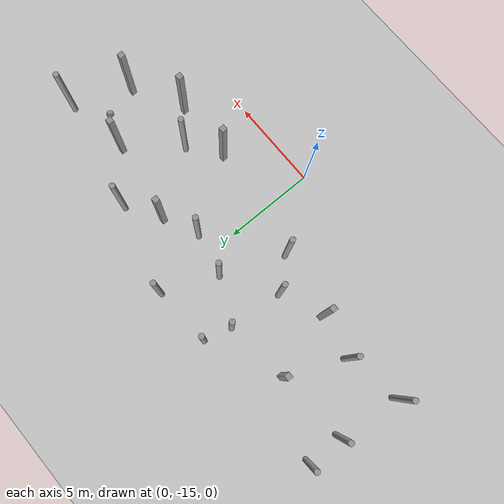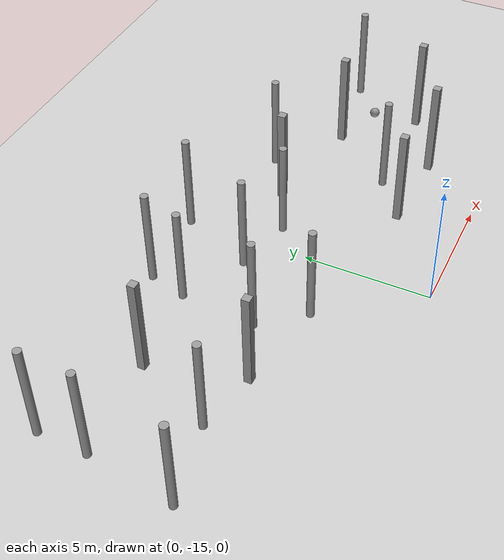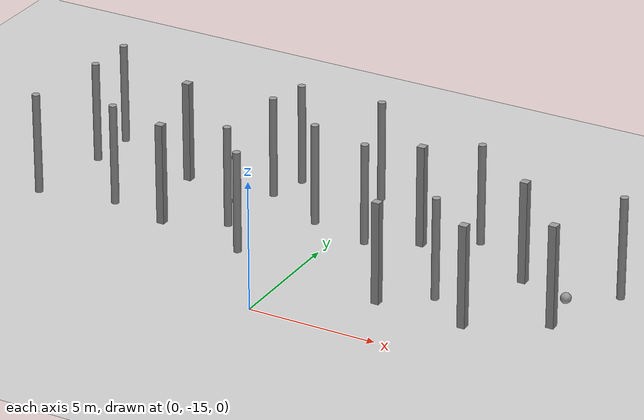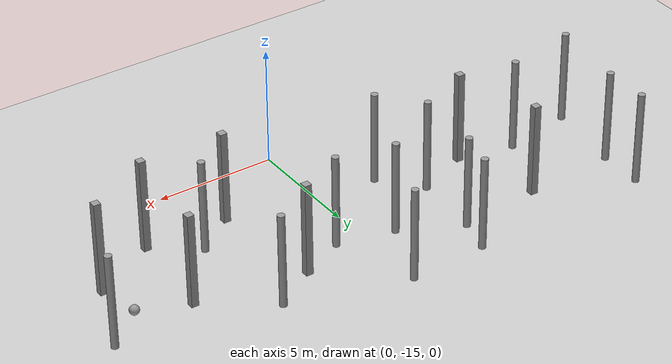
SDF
<sdf version="1.6">
 <world name="default">
  <model name="ground_plane">
   <static>1</static>
   <link name="link">
    <collision name="collision">
     <geometry><plane><normal>0 0 1</normal><size>100 100</size></plane></geometry>
    </collision>
    <visual name="visual">
     <cast_shadows>0</cast_shadows>
     <geometry><plane><normal>0 0 1</normal><size>100 100</size></plane></geometry>
     <material>
      <script><uri>file://media/materials/scripts/gazebo.material</uri><name>Gazebo/Gray</name></script>
     </material>
    </visual>
   </link>
  </model>
  <model name="unit_sphere">
   <link name="link">
    <inertial>
     <mass>1</mass>
     <inertia><ixx>0.1</ixx><ixy>0</ixy><ixz>0</ixz><iyy>0.1</iyy><iyz>0</iyz><izz>0.1</izz></inertia>
    </inertial>
    <gravity>0</gravity>
    <visual name="visual">
     <geometry><sphere><radius>0.203941</radius></sphere></geometry>
     <material>
      <script><name>Gazebo/Grey</name><uri>file://media/materials/scripts/gazebo.material</uri></script>
      <shader type="pixel"><normal_map>__default__</normal_map></shader>
     </material>
    </visual>
    <collision name="collision">
     <geometry><sphere><radius>0.203941</radius></sphere></geometry>
     <surface>
      <friction>
       <ode><mu>1</mu><mu2>1</mu2><fdir1>0 0 0</fdir1><slip1>0</slip1><slip2>0</slip2></ode>
       <torsional>
        <coefficient>1</coefficient>
        <patch_radius>0</patch_radius>
        <surface_radius>0</surface_radius>
        <use_patch_radius>1</use_patch_radius>
        <ode><slip>0</slip></ode>
       </torsional>
      </friction>
      <bounce><restitution_coefficient>0</restitution_coefficient><threshold>1e+06</threshold></bounce>
      <contact>
       <collide_without_contact>0</collide_without_contact>
       <collide_without_contact_bitmask>1</collide_without_contact_bitmask>
       <collide_bitmask>1</collide_bitmask>
       <ode>
        <soft_cfm>0</soft_cfm>
        <soft_erp>0.2</soft_erp>
        <kp>1e+13</kp>
        <kd>1</kd>
        <max_vel>0.01</max_vel>
        <min_depth>0</min_depth>
       </ode>
       <bullet>
        <split_impulse>1</split_impulse>
        <split_impulse_penetration_threshold>-0.01</split_impulse_penetration_threshold>
        <soft_cfm>0</soft_cfm>
        <soft_erp>0.2</soft_erp>
        <kp>1e+13</kp>
        <kd>1</kd>
       </bullet>
      </contact>
     </surface>
    </collision>
   </link>
   <static>0</static>
   <pose>9.54607 -9.14462 0.203941 0 -0 0</pose>
  </model>
  <model name="unit_box_clone_7">
   <link name="link">
    <inertial>
     <mass>1000</mass>
     <inertia><ixx>166.667</ixx><ixy>0</ixy><ixz>0</ixz><iyy>166.667</iyy><iyz>0</iyz><izz>166.667</izz></inertia>
    </inertial>
    <visual name="visual">
     <geometry><box><size>0.3 0.3 4</size></box></geometry>
     <material>
      <script><name>Gazebo/Grey</name><uri>file://media/materials/scripts/gazebo.material</uri></script>
      <shader type="vertex"><normal_map>__default__</normal_map></shader>
      <ambient>0.3 0.3 0.3 1</ambient>
      <diffuse>0.7 0.7 0.7 1</diffuse>
      <specular>0.01 0.01 0.01 1</specular>
      <emissive>0 0 0 1</emissive>
     </material>
    </visual>
    <collision name="collision">
     <geometry><box><size>0.3 0.3 4</size></box></geometry>
     <surface>
      <friction>
       <ode><mu>1</mu><mu2>1</mu2><fdir1>0 0 0</fdir1><slip1>0</slip1><slip2>0</slip2></ode>
       <torsional>
        <coefficient>1</coefficient>
        <patch_radius>0</patch_radius>
        <surface_radius>0</surface_radius>
        <use_patch_radius>1</use_patch_radius>
        <ode><slip>0</slip></ode>
       </torsional>
      </friction>
      <bounce><restitution_coefficient>0</restitution_coefficient><threshold>1e+06</threshold></bounce>
      <contact>
       <collide_without_contact>0</collide_without_contact>
       <collide_without_contact_bitmask>1</collide_without_contact_bitmask>
       <collide_bitmask>1</collide_bitmask>
       <ode>
        <soft_cfm>0</soft_cfm>
        <soft_erp>0.2</soft_erp>
        <kp>1e+13</kp>
        <kd>1</kd>
        <max_vel>0.01</max_vel>
        <min_depth>0</min_depth>
       </ode>
       <bullet>
        <split_impulse>1</split_impulse>
        <split_impulse_penetration_threshold>-0.01</split_impulse_penetration_threshold>
        <soft_cfm>0</soft_cfm>
        <soft_erp>0.2</soft_erp>
        <kp>1e+13</kp>
        <kd>1</kd>
       </bullet>
      </contact>
     </surface>
    </collision>
   </link>
   <static>0</static>
   <pose>9.86054 -10.9628 2.00001 -4.1e-05 -2e-06 -0.008062</pose>
  </model>
  <model name="unit_cylinder_clone_1_clone">
   <link name="link">
    <inertial>
     <mass>1000</mass>
     <inertia><ixx>145.833</ixx><ixy>0</ixy><ixz>0</ixz><iyy>145.833</iyy><iyz>0</iyz><izz>125</izz></inertia>
    </inertial>
    <visual name="visual">
     <geometry><cylinder><radius>0.15</radius><length>4</length></cylinder></geometry>
     <material>
      <script><name>Gazebo/Grey</name><uri>file://media/materials/scripts/gazebo.material</uri></script>
      <shader type="vertex"><normal_map>__default__</normal_map></shader>
      <ambient>0.3 0.3 0.3 1</ambient>
      <diffuse>0.7 0.7 0.7 1</diffuse>
      <specular>0.01 0.01 0.01 1</specular>
      <emissive>0 0 0 1</emissive>
     </material>
    </visual>
    <collision name="collision">
     <geometry><cylinder><radius>0.15</radius><length>4</length></cylinder></geometry>
     <surface>
      <friction>
       <ode><mu>1</mu><mu2>1</mu2><fdir1>0 0 0</fdir1><slip1>0</slip1><slip2>0</slip2></ode>
       <torsional>
        <coefficient>1</coefficient>
        <patch_radius>0</patch_radius>
        <surface_radius>0</surface_radius>
        <use_patch_radius>1</use_patch_radius>
        <ode><slip>0</slip></ode>
       </torsional>
      </friction>
      <bounce><restitution_coefficient>0</restitution_coefficient><threshold>1e+06</threshold></bounce>
      <contact>
       <collide_without_contact>0</collide_without_contact>
       <collide_without_contact_bitmask>1</collide_without_contact_bitmask>
       <collide_bitmask>1</collide_bitmask>
       <ode>
        <soft_cfm>0</soft_cfm>
        <soft_erp>0.2</soft_erp>
        <kp>1e+13</kp>
        <kd>1</kd>
        <max_vel>0.01</max_vel>
        <min_depth>0</min_depth>
       </ode>
       <bullet>
        <split_impulse>1</split_impulse>
        <split_impulse_penetration_threshold>-0.01</split_impulse_penetration_threshold>
        <soft_cfm>0</soft_cfm>
        <soft_erp>0.2</soft_erp>
        <kp>1e+13</kp>
        <kd>1</kd>
       </bullet>
      </contact>
     </surface>
    </collision>
   </link>
   <static>0</static>
   <pose>-1.25701 -8.01539 1.99995 -0.000271 -2.8e-05 -0.895801</pose>
  </model>
  <model name="unit_cylinder_clone_1_clone_2">
   <link name="link">
    <inertial>
     <mass>1000</mass>
     <inertia><ixx>145.833</ixx><ixy>0</ixy><ixz>0</ixz><iyy>145.833</iyy><iyz>0</iyz><izz>125</izz></inertia>
    </inertial>
    <visual name="visual">
     <geometry><cylinder><radius>0.15</radius><length>4</length></cylinder></geometry>
     <material>
      <script><name>Gazebo/Grey</name><uri>file://media/materials/scripts/gazebo.material</uri></script>
      <shader type="vertex"><normal_map>__default__</normal_map></shader>
      <ambient>0.3 0.3 0.3 1</ambient>
      <diffuse>0.7 0.7 0.7 1</diffuse>
      <specular>0.01 0.01 0.01 1</specular>
      <emissive>0 0 0 1</emissive>
     </material>
    </visual>
    <collision name="collision">
     <geometry><cylinder><radius>0.15</radius><length>4</length></cylinder></geometry>
     <surface>
      <friction>
       <ode><mu>1</mu><mu2>1</mu2><fdir1>0 0 0</fdir1><slip1>0</slip1><slip2>0</slip2></ode>
       <torsional>
        <coefficient>1</coefficient>
        <patch_radius>0</patch_radius>
        <surface_radius>0</surface_radius>
        <use_patch_radius>1</use_patch_radius>
        <ode><slip>0</slip></ode>
       </torsional>
      </friction>
      <bounce><restitution_coefficient>0</restitution_coefficient><threshold>1e+06</threshold></bounce>
      <contact>
       <collide_without_contact>0</collide_without_contact>
       <collide_without_contact_bitmask>1</collide_without_contact_bitmask>
       <collide_bitmask>1</collide_bitmask>
       <ode>
        <soft_cfm>0</soft_cfm>
        <soft_erp>0.2</soft_erp>
        <kp>1e+13</kp>
        <kd>1</kd>
        <max_vel>0.01</max_vel>
        <min_depth>0</min_depth>
       </ode>
       <bullet>
        <split_impulse>1</split_impulse>
        <split_impulse_penetration_threshold>-0.01</split_impulse_penetration_threshold>
        <soft_cfm>0</soft_cfm>
        <soft_erp>0.2</soft_erp>
        <kp>1e+13</kp>
        <kd>1</kd>
       </bullet>
      </contact>
     </surface>
    </collision>
   </link>
   <static>0</static>
   <pose>-3.73083 -6.76311 1.99995 -0.000271 -2.8e-05 -0.89745</pose>
  </model>
  <model name="unit_cylinder_clone_1_clone_6">
   <link name="link">
    <inertial>
     <mass>1000</mass>
     <inertia><ixx>145.833</ixx><ixy>0</ixy><ixz>0</ixz><iyy>145.833</iyy><iyz>0</iyz><izz>125</izz></inertia>
    </inertial>
    <visual name="visual">
     <geometry><cylinder><radius>0.15</radius><length>4</length></cylinder></geometry>
     <material>
      <script><name>Gazebo/Grey</name><uri>file://media/materials/scripts/gazebo.material</uri></script>
      <shader type="vertex"><normal_map>__default__</normal_map></shader>
      <ambient>0.3 0.3 0.3 1</ambient>
      <diffuse>0.7 0.7 0.7 1</diffuse>
      <specular>0.01 0.01 0.01 1</specular>
      <emissive>0 0 0 1</emissive>
     </material>
    </visual>
    <collision name="collision">
     <geometry><cylinder><radius>0.15</radius><length>4</length></cylinder></geometry>
     <surface>
      <friction>
       <ode><mu>1</mu><mu2>1</mu2><fdir1>0 0 0</fdir1><slip1>0</slip1><slip2>0</slip2></ode>
       <torsional>
        <coefficient>1</coefficient>
        <patch_radius>0</patch_radius>
        <surface_radius>0</surface_radius>
        <use_patch_radius>1</use_patch_radius>
        <ode><slip>0</slip></ode>
       </torsional>
      </friction>
      <bounce><restitution_coefficient>0</restitution_coefficient><threshold>1e+06</threshold></bounce>
      <contact>
       <collide_without_contact>0</collide_without_contact>
       <collide_without_contact_bitmask>1</collide_without_contact_bitmask>
       <collide_bitmask>1</collide_bitmask>
       <ode>
        <soft_cfm>0</soft_cfm>
        <soft_erp>0.2</soft_erp>
        <kp>1e+13</kp>
        <kd>1</kd>
        <max_vel>0.01</max_vel>
        <min_depth>0</min_depth>
       </ode>
       <bullet>
        <split_impulse>1</split_impulse>
        <split_impulse_penetration_threshold>-0.01</split_impulse_penetration_threshold>
        <soft_cfm>0</soft_cfm>
        <soft_erp>0.2</soft_erp>
        <kp>1e+13</kp>
        <kd>1</kd>
       </bullet>
      </contact>
     </surface>
    </collision>
   </link>
   <static>0</static>
   <pose>-3.34464 -5.28283 1.99998 -1e-06 -0 -0.211139</pose>
  </model>
  <model name="unit_cylinder_clone_1_clone_9">
   <link name="link">
    <inertial>
     <mass>1000</mass>
     <inertia><ixx>145.833</ixx><ixy>0</ixy><ixz>0</ixz><iyy>145.833</iyy><iyz>0</iyz><izz>125</izz></inertia>
    </inertial>
    <visual name="visual">
     <geometry><cylinder><radius>0.15</radius><length>4</length></cylinder></geometry>
     <material>
      <script><name>Gazebo/Grey</name><uri>file://media/materials/scripts/gazebo.material</uri></script>
      <shader type="vertex"><normal_map>__default__</normal_map></shader>
      <ambient>0.3 0.3 0.3 1</ambient>
      <diffuse>0.7 0.7 0.7 1</diffuse>
      <specular>0.01 0.01 0.01 1</specular>
      <emissive>0 0 0 1</emissive>
     </material>
    </visual>
    <collision name="collision">
     <geometry><cylinder><radius>0.15</radius><length>4</length></cylinder></geometry>
     <surface>
      <friction>
       <ode><mu>1</mu><mu2>1</mu2><fdir1>0 0 0</fdir1><slip1>0</slip1><slip2>0</slip2></ode>
       <torsional>
        <coefficient>1</coefficient>
        <patch_radius>0</patch_radius>
        <surface_radius>0</surface_radius>
        <use_patch_radius>1</use_patch_radius>
        <ode><slip>0</slip></ode>
       </torsional>
      </friction>
      <bounce><restitution_coefficient>0</restitution_coefficient><threshold>1e+06</threshold></bounce>
      <contact>
       <collide_without_contact>0</collide_without_contact>
       <collide_without_contact_bitmask>1</collide_without_contact_bitmask>
       <collide_bitmask>1</collide_bitmask>
       <ode>
        <soft_cfm>0</soft_cfm>
        <soft_erp>0.2</soft_erp>
        <kp>1e+13</kp>
        <kd>1</kd>
        <max_vel>0.01</max_vel>
        <min_depth>0</min_depth>
       </ode>
       <bullet>
        <split_impulse>1</split_impulse>
        <split_impulse_penetration_threshold>-0.01</split_impulse_penetration_threshold>
        <soft_cfm>0</soft_cfm>
        <soft_erp>0.2</soft_erp>
        <kp>1e+13</kp>
        <kd>1</kd>
       </bullet>
      </contact>
     </surface>
    </collision>
   </link>
   <static>0</static>
   <pose>11.0857 -7.86361 1.99995 -0.000271 -2.8e-05 -0.898002</pose>
  </model>
  <model name="unit_cylinder_clone_1_clone_10">
   <link name="link">
    <inertial>
     <mass>1000</mass>
     <inertia><ixx>145.833</ixx><ixy>0</ixy><ixz>0</ixz><iyy>145.833</iyy><iyz>0</iyz><izz>125</izz></inertia>
    </inertial>
    <visual name="visual">
     <geometry><cylinder><radius>0.15</radius><length>4</length></cylinder></geometry>
     <material>
      <script><name>Gazebo/Grey</name><uri>file://media/materials/scripts/gazebo.material</uri></script>
      <shader type="vertex"><normal_map>__default__</normal_map></shader>
      <ambient>0.3 0.3 0.3 1</ambient>
      <diffuse>0.7 0.7 0.7 1</diffuse>
      <specular>0.01 0.01 0.01 1</specular>
      <emissive>0 0 0 1</emissive>
     </material>
    </visual>
    <collision name="collision">
     <geometry><cylinder><radius>0.15</radius><length>4</length></cylinder></geometry>
     <surface>
      <friction>
       <ode><mu>1</mu><mu2>1</mu2><fdir1>0 0 0</fdir1><slip1>0</slip1><slip2>0</slip2></ode>
       <torsional>
        <coefficient>1</coefficient>
        <patch_radius>0</patch_radius>
        <surface_radius>0</surface_radius>
        <use_patch_radius>1</use_patch_radius>
        <ode><slip>0</slip></ode>
       </torsional>
      </friction>
      <bounce><restitution_coefficient>0</restitution_coefficient><threshold>1e+06</threshold></bounce>
      <contact>
       <collide_without_contact>0</collide_without_contact>
       <collide_without_contact_bitmask>1</collide_without_contact_bitmask>
       <collide_bitmask>1</collide_bitmask>
       <ode>
        <soft_cfm>0</soft_cfm>
        <soft_erp>0.2</soft_erp>
        <kp>1e+13</kp>
        <kd>1</kd>
        <max_vel>0.01</max_vel>
        <min_depth>0</min_depth>
       </ode>
       <bullet>
        <split_impulse>1</split_impulse>
        <split_impulse_penetration_threshold>-0.01</split_impulse_penetration_threshold>
        <soft_cfm>0</soft_cfm>
        <soft_erp>0.2</soft_erp>
        <kp>1e+13</kp>
        <kd>1</kd>
       </bullet>
      </contact>
     </surface>
    </collision>
   </link>
   <static>0</static>
   <pose>-0.051733 -5.11046 1.99998 -2e-06 -0 -0.192808</pose>
  </model>
  <model name="unit_cylinder_clone_1_clone_15">
   <link name="link">
    <inertial>
     <mass>1000</mass>
     <inertia><ixx>145.833</ixx><ixy>0</ixy><ixz>0</ixz><iyy>145.833</iyy><iyz>0</iyz><izz>125</izz></inertia>
    </inertial>
    <visual name="visual">
     <geometry><cylinder><radius>0.15</radius><length>4</length></cylinder></geometry>
     <material>
      <script><name>Gazebo/Grey</name><uri>file://media/materials/scripts/gazebo.material</uri></script>
      <shader type="vertex"><normal_map>__default__</normal_map></shader>
      <ambient>0.3 0.3 0.3 1</ambient>
      <diffuse>0.7 0.7 0.7 1</diffuse>
      <specular>0.01 0.01 0.01 1</specular>
      <emissive>0 0 0 1</emissive>
     </material>
    </visual>
    <collision name="collision">
     <geometry><cylinder><radius>0.15</radius><length>4</length></cylinder></geometry>
     <surface>
      <friction>
       <ode><mu>1</mu><mu2>1</mu2><fdir1>0 0 0</fdir1><slip1>0</slip1><slip2>0</slip2></ode>
       <torsional>
        <coefficient>1</coefficient>
        <patch_radius>0</patch_radius>
        <surface_radius>0</surface_radius>
        <use_patch_radius>1</use_patch_radius>
        <ode><slip>0</slip></ode>
       </torsional>
      </friction>
      <bounce><restitution_coefficient>0</restitution_coefficient><threshold>1e+06</threshold></bounce>
      <contact>
       <collide_without_contact>0</collide_without_contact>
       <collide_without_contact_bitmask>1</collide_without_contact_bitmask>
       <collide_bitmask>1</collide_bitmask>
       <ode>
        <soft_cfm>0</soft_cfm>
        <soft_erp>0.2</soft_erp>
        <kp>1e+13</kp>
        <kd>1</kd>
        <max_vel>0.01</max_vel>
        <min_depth>0</min_depth>
       </ode>
       <bullet>
        <split_impulse>1</split_impulse>
        <split_impulse_penetration_threshold>-0.01</split_impulse_penetration_threshold>
        <soft_cfm>0</soft_cfm>
        <soft_erp>0.2</soft_erp>
        <kp>1e+13</kp>
        <kd>1</kd>
       </bullet>
      </contact>
     </surface>
    </collision>
   </link>
   <static>0</static>
   <pose>-11.097 -7.3718 1.99995 -0.000271 -2.9e-05 -0.899273</pose>
  </model>
  <model name="unit_cylinder_clone_1_clone_18">
   <link name="link">
    <inertial>
     <mass>1000</mass>
     <inertia><ixx>145.833</ixx><ixy>0</ixy><ixz>0</ixz><iyy>145.833</iyy><iyz>0</iyz><izz>125</izz></inertia>
    </inertial>
    <visual name="visual">
     <geometry><cylinder><radius>0.15</radius><length>4</length></cylinder></geometry>
     <material>
      <script><name>Gazebo/Grey</name><uri>file://media/materials/scripts/gazebo.material</uri></script>
      <shader type="vertex"><normal_map>__default__</normal_map></shader>
      <ambient>0.3 0.3 0.3 1</ambient>
      <diffuse>0.7 0.7 0.7 1</diffuse>
      <specular>0.01 0.01 0.01 1</specular>
      <emissive>0 0 0 1</emissive>
     </material>
    </visual>
    <collision name="collision">
     <geometry><cylinder><radius>0.15</radius><length>4</length></cylinder></geometry>
     <surface>
      <friction>
       <ode><mu>1</mu><mu2>1</mu2><fdir1>0 0 0</fdir1><slip1>0</slip1><slip2>0</slip2></ode>
       <torsional>
        <coefficient>1</coefficient>
        <patch_radius>0</patch_radius>
        <surface_radius>0</surface_radius>
        <use_patch_radius>1</use_patch_radius>
        <ode><slip>0</slip></ode>
       </torsional>
      </friction>
      <bounce><restitution_coefficient>0</restitution_coefficient><threshold>1e+06</threshold></bounce>
      <contact>
       <collide_without_contact>0</collide_without_contact>
       <collide_without_contact_bitmask>1</collide_without_contact_bitmask>
       <collide_bitmask>1</collide_bitmask>
       <ode>
        <soft_cfm>0</soft_cfm>
        <soft_erp>0.2</soft_erp>
        <kp>1e+13</kp>
        <kd>1</kd>
        <max_vel>0.01</max_vel>
        <min_depth>0</min_depth>
       </ode>
       <bullet>
        <split_impulse>1</split_impulse>
        <split_impulse_penetration_threshold>-0.01</split_impulse_penetration_threshold>
        <soft_cfm>0</soft_cfm>
        <soft_erp>0.2</soft_erp>
        <kp>1e+13</kp>
        <kd>1</kd>
       </bullet>
      </contact>
     </surface>
    </collision>
   </link>
   <static>0</static>
   <pose>-11.5682 -10.7547 1.99995 -0.000271 -3e-05 -0.902959</pose>
  </model>
  <model name="unit_cylinder_clone_1_clone_19">
   <link name="link">
    <inertial>
     <mass>1000</mass>
     <inertia><ixx>145.833</ixx><ixy>0</ixy><ixz>0</ixz><iyy>145.833</iyy><iyz>0</iyz><izz>125</izz></inertia>
    </inertial>
    <visual name="visual">
     <geometry><cylinder><radius>0.15</radius><length>4</length></cylinder></geometry>
     <material>
      <script><name>Gazebo/Grey</name><uri>file://media/materials/scripts/gazebo.material</uri></script>
      <shader type="vertex"><normal_map>__default__</normal_map></shader>
      <ambient>0.3 0.3 0.3 1</ambient>
      <diffuse>0.7 0.7 0.7 1</diffuse>
      <specular>0.01 0.01 0.01 1</specular>
      <emissive>0 0 0 1</emissive>
     </material>
    </visual>
    <collision name="collision">
     <geometry><cylinder><radius>0.15</radius><length>4</length></cylinder></geometry>
     <surface>
      <friction>
       <ode><mu>1</mu><mu2>1</mu2><fdir1>0 0 0</fdir1><slip1>0</slip1><slip2>0</slip2></ode>
       <torsional>
        <coefficient>1</coefficient>
        <patch_radius>0</patch_radius>
        <surface_radius>0</surface_radius>
        <use_patch_radius>1</use_patch_radius>
        <ode><slip>0</slip></ode>
       </torsional>
      </friction>
      <bounce><restitution_coefficient>0</restitution_coefficient><threshold>1e+06</threshold></bounce>
      <contact>
       <collide_without_contact>0</collide_without_contact>
       <collide_without_contact_bitmask>1</collide_without_contact_bitmask>
       <collide_bitmask>1</collide_bitmask>
       <ode>
        <soft_cfm>0</soft_cfm>
        <soft_erp>0.2</soft_erp>
        <kp>1e+13</kp>
        <kd>1</kd>
        <max_vel>0.01</max_vel>
        <min_depth>0</min_depth>
       </ode>
       <bullet>
        <split_impulse>1</split_impulse>
        <split_impulse_penetration_threshold>-0.01</split_impulse_penetration_threshold>
        <soft_cfm>0</soft_cfm>
        <soft_erp>0.2</soft_erp>
        <kp>1e+13</kp>
        <kd>1</kd>
       </bullet>
      </contact>
     </surface>
    </collision>
   </link>
   <static>0</static>
   <pose>1.10671 -8.55188 1.99995 -0.000271 -2.9e-05 -0.899999</pose>
  </model>
  <model name="unit_cylinder_clone_1_clone_25">
   <link name="link">
    <inertial>
     <mass>1000</mass>
     <inertia><ixx>145.833</ixx><ixy>0</ixy><ixz>0</ixz><iyy>145.833</iyy><iyz>0</iyz><izz>125</izz></inertia>
    </inertial>
    <visual name="visual">
     <geometry><cylinder><radius>0.15</radius><length>4</length></cylinder></geometry>
     <material>
      <script><name>Gazebo/Grey</name><uri>file://media/materials/scripts/gazebo.material</uri></script>
      <shader type="vertex"><normal_map>__default__</normal_map></shader>
      <ambient>0.3 0.3 0.3 1</ambient>
      <diffuse>0.7 0.7 0.7 1</diffuse>
      <specular>0.01 0.01 0.01 1</specular>
      <emissive>0 0 0 1</emissive>
     </material>
    </visual>
    <collision name="collision">
     <geometry><cylinder><radius>0.15</radius><length>4</length></cylinder></geometry>
     <surface>
      <friction>
       <ode><mu>1</mu><mu2>1</mu2><fdir1>0 0 0</fdir1><slip1>0</slip1><slip2>0</slip2></ode>
       <torsional>
        <coefficient>1</coefficient>
        <patch_radius>0</patch_radius>
        <surface_radius>0</surface_radius>
        <use_patch_radius>1</use_patch_radius>
        <ode><slip>0</slip></ode>
       </torsional>
      </friction>
      <bounce><restitution_coefficient>0</restitution_coefficient><threshold>1e+06</threshold></bounce>
      <contact>
       <collide_without_contact>0</collide_without_contact>
       <collide_without_contact_bitmask>1</collide_without_contact_bitmask>
       <collide_bitmask>1</collide_bitmask>
       <ode>
        <soft_cfm>0</soft_cfm>
        <soft_erp>0.2</soft_erp>
        <kp>1e+13</kp>
        <kd>1</kd>
        <max_vel>0.01</max_vel>
        <min_depth>0</min_depth>
       </ode>
       <bullet>
        <split_impulse>1</split_impulse>
        <split_impulse_penetration_threshold>-0.01</split_impulse_penetration_threshold>
        <soft_cfm>0</soft_cfm>
        <soft_erp>0.2</soft_erp>
        <kp>1e+13</kp>
        <kd>1</kd>
       </bullet>
      </contact>
     </surface>
    </collision>
   </link>
   <static>0</static>
   <pose>-11.0466 -5.44229 1.99995 -0.000271 -3e-05 -0.904055</pose>
  </model>
  <model name="unit_cylinder_clone_1_clone_26">
   <link name="link">
    <inertial>
     <mass>1000</mass>
     <inertia><ixx>145.833</ixx><ixy>0</ixy><ixz>0</ixz><iyy>145.833</iyy><iyz>0</iyz><izz>125</izz></inertia>
    </inertial>
    <visual name="visual">
     <geometry><cylinder><radius>0.15</radius><length>4</length></cylinder></geometry>
     <material>
      <script><name>Gazebo/Grey</name><uri>file://media/materials/scripts/gazebo.material</uri></script>
      <shader type="vertex"><normal_map>__default__</normal_map></shader>
      <ambient>0.3 0.3 0.3 1</ambient>
      <diffuse>0.7 0.7 0.7 1</diffuse>
      <specular>0.01 0.01 0.01 1</specular>
      <emissive>0 0 0 1</emissive>
     </material>
    </visual>
    <collision name="collision">
     <geometry><cylinder><radius>0.15</radius><length>4</length></cylinder></geometry>
     <surface>
      <friction>
       <ode><mu>1</mu><mu2>1</mu2><fdir1>0 0 0</fdir1><slip1>0</slip1><slip2>0</slip2></ode>
       <torsional>
        <coefficient>1</coefficient>
        <patch_radius>0</patch_radius>
        <surface_radius>0</surface_radius>
        <use_patch_radius>1</use_patch_radius>
        <ode><slip>0</slip></ode>
       </torsional>
      </friction>
      <bounce><restitution_coefficient>0</restitution_coefficient><threshold>1e+06</threshold></bounce>
      <contact>
       <collide_without_contact>0</collide_without_contact>
       <collide_without_contact_bitmask>1</collide_without_contact_bitmask>
       <collide_bitmask>1</collide_bitmask>
       <ode>
        <soft_cfm>0</soft_cfm>
        <soft_erp>0.2</soft_erp>
        <kp>1e+13</kp>
        <kd>1</kd>
        <max_vel>0.01</max_vel>
        <min_depth>0</min_depth>
       </ode>
       <bullet>
        <split_impulse>1</split_impulse>
        <split_impulse_penetration_threshold>-0.01</split_impulse_penetration_threshold>
        <soft_cfm>0</soft_cfm>
        <soft_erp>0.2</soft_erp>
        <kp>1e+13</kp>
        <kd>1</kd>
       </bullet>
      </contact>
     </surface>
    </collision>
   </link>
   <static>0</static>
   <pose>-3.96559 -9.72209 1.99995 -0.000271 -3e-05 -0.903207</pose>
  </model>
  <model name="unit_cylinder_clone_1_clone_28">
   <link name="link">
    <inertial>
     <mass>1000</mass>
     <inertia><ixx>145.833</ixx><ixy>0</ixy><ixz>0</ixz><iyy>145.833</iyy><iyz>0</iyz><izz>125</izz></inertia>
    </inertial>
    <visual name="visual">
     <geometry><cylinder><radius>0.15</radius><length>4</length></cylinder></geometry>
     <material>
      <script><name>Gazebo/Grey</name><uri>file://media/materials/scripts/gazebo.material</uri></script>
      <shader type="vertex"><normal_map>__default__</normal_map></shader>
      <ambient>0.3 0.3 0.3 1</ambient>
      <diffuse>0.7 0.7 0.7 1</diffuse>
      <specular>0.01 0.01 0.01 1</specular>
      <emissive>0 0 0 1</emissive>
     </material>
    </visual>
    <collision name="collision">
     <geometry><cylinder><radius>0.15</radius><length>4</length></cylinder></geometry>
     <surface>
      <friction>
       <ode><mu>1</mu><mu2>1</mu2><fdir1>0 0 0</fdir1><slip1>0</slip1><slip2>0</slip2></ode>
       <torsional>
        <coefficient>1</coefficient>
        <patch_radius>0</patch_radius>
        <surface_radius>0</surface_radius>
        <use_patch_radius>1</use_patch_radius>
        <ode><slip>0</slip></ode>
       </torsional>
      </friction>
      <bounce><restitution_coefficient>0</restitution_coefficient><threshold>1e+06</threshold></bounce>
      <contact>
       <collide_without_contact>0</collide_without_contact>
       <collide_without_contact_bitmask>1</collide_without_contact_bitmask>
       <collide_bitmask>1</collide_bitmask>
       <ode>
        <soft_cfm>0</soft_cfm>
        <soft_erp>0.2</soft_erp>
        <kp>1e+13</kp>
        <kd>1</kd>
        <max_vel>0.01</max_vel>
        <min_depth>0</min_depth>
       </ode>
       <bullet>
        <split_impulse>1</split_impulse>
        <split_impulse_penetration_threshold>-0.01</split_impulse_penetration_threshold>
        <soft_cfm>0</soft_cfm>
        <soft_erp>0.2</soft_erp>
        <kp>1e+13</kp>
        <kd>1</kd>
       </bullet>
      </contact>
     </surface>
    </collision>
   </link>
   <static>0</static>
   <pose>-2.60917 -11.3566 1.99995 -0.000271 -3e-05 -0.904064</pose>
  </model>
  <model name="unit_cylinder_clone_1_clone_30">
   <link name="link">
    <inertial>
     <mass>1000</mass>
     <inertia><ixx>145.833</ixx><ixy>0</ixy><ixz>0</ixz><iyy>145.833</iyy><iyz>0</iyz><izz>125</izz></inertia>
    </inertial>
    <visual name="visual">
     <geometry><cylinder><radius>0.15</radius><length>4</length></cylinder></geometry>
     <material>
      <script><name>Gazebo/Grey</name><uri>file://media/materials/scripts/gazebo.material</uri></script>
      <shader type="vertex"><normal_map>__default__</normal_map></shader>
      <ambient>0.3 0.3 0.3 1</ambient>
      <diffuse>0.7 0.7 0.7 1</diffuse>
      <specular>0.01 0.01 0.01 1</specular>
      <emissive>0 0 0 1</emissive>
     </material>
    </visual>
    <collision name="collision">
     <geometry><cylinder><radius>0.15</radius><length>4</length></cylinder></geometry>
     <surface>
      <friction>
       <ode><mu>1</mu><mu2>1</mu2><fdir1>0 0 0</fdir1><slip1>0</slip1><slip2>0</slip2></ode>
       <torsional>
        <coefficient>1</coefficient>
        <patch_radius>0</patch_radius>
        <surface_radius>0</surface_radius>
        <use_patch_radius>1</use_patch_radius>
        <ode><slip>0</slip></ode>
       </torsional>
      </friction>
      <bounce><restitution_coefficient>0</restitution_coefficient><threshold>1e+06</threshold></bounce>
      <contact>
       <collide_without_contact>0</collide_without_contact>
       <collide_without_contact_bitmask>1</collide_without_contact_bitmask>
       <collide_bitmask>1</collide_bitmask>
       <ode>
        <soft_cfm>0</soft_cfm>
        <soft_erp>0.2</soft_erp>
        <kp>1e+13</kp>
        <kd>1</kd>
        <max_vel>0.01</max_vel>
        <min_depth>0</min_depth>
       </ode>
       <bullet>
        <split_impulse>1</split_impulse>
        <split_impulse_penetration_threshold>-0.01</split_impulse_penetration_threshold>
        <soft_cfm>0</soft_cfm>
        <soft_erp>0.2</soft_erp>
        <kp>1e+13</kp>
        <kd>1</kd>
       </bullet>
      </contact>
     </surface>
    </collision>
   </link>
   <static>0</static>
   <pose>-8.57277 -10.1765 1.99995 -0.000271 -3e-05 -0.90405</pose>
  </model>
  <model name="unit_cylinder_clone_clone">
   <link name="link">
    <inertial>
     <mass>1000</mass>
     <inertia><ixx>145.833</ixx><ixy>0</ixy><ixz>0</ixz><iyy>145.833</iyy><iyz>0</iyz><izz>125</izz></inertia>
    </inertial>
    <visual name="visual">
     <geometry><cylinder><radius>0.15</radius><length>4</length></cylinder></geometry>
     <material>
      <script><name>Gazebo/Grey</name><uri>file://media/materials/scripts/gazebo.material</uri></script>
      <shader type="vertex"><normal_map>__default__</normal_map></shader>
      <ambient>0.3 0.3 0.3 1</ambient>
      <diffuse>0.7 0.7 0.7 1</diffuse>
      <specular>0.01 0.01 0.01 1</specular>
      <emissive>0 0 0 1</emissive>
     </material>
    </visual>
    <collision name="collision">
     <geometry><cylinder><radius>0.15</radius><length>4</length></cylinder></geometry>
     <surface>
      <friction>
       <ode><mu>1</mu><mu2>1</mu2><fdir1>0 0 0</fdir1><slip1>0</slip1><slip2>0</slip2></ode>
       <torsional>
        <coefficient>1</coefficient>
        <patch_radius>0</patch_radius>
        <surface_radius>0</surface_radius>
        <use_patch_radius>1</use_patch_radius>
        <ode><slip>0</slip></ode>
       </torsional>
      </friction>
      <bounce><restitution_coefficient>0</restitution_coefficient><threshold>1e+06</threshold></bounce>
      <contact>
       <collide_without_contact>0</collide_without_contact>
       <collide_without_contact_bitmask>1</collide_without_contact_bitmask>
       <collide_bitmask>1</collide_bitmask>
       <ode>
        <soft_cfm>0</soft_cfm>
        <soft_erp>0.2</soft_erp>
        <kp>1e+13</kp>
        <kd>1</kd>
        <max_vel>0.01</max_vel>
        <min_depth>0</min_depth>
       </ode>
       <bullet>
        <split_impulse>1</split_impulse>
        <split_impulse_penetration_threshold>-0.01</split_impulse_penetration_threshold>
        <soft_cfm>0</soft_cfm>
        <soft_erp>0.2</soft_erp>
        <kp>1e+13</kp>
        <kd>1</kd>
       </bullet>
      </contact>
     </surface>
    </collision>
   </link>
   <static>0</static>
   <pose>5.35111 -11.104 1.99998 -1e-06 1e-06 -0.188056</pose>
  </model>
  <model name="unit_cylinder_clone_clone_1">
   <link name="link">
    <inertial>
     <mass>1000</mass>
     <inertia><ixx>145.833</ixx><ixy>0</ixy><ixz>0</ixz><iyy>145.833</iyy><iyz>0</iyz><izz>125</izz></inertia>
    </inertial>
    <visual name="visual">
     <geometry><cylinder><radius>0.15</radius><length>4</length></cylinder></geometry>
     <material>
      <script><name>Gazebo/Grey</name><uri>file://media/materials/scripts/gazebo.material</uri></script>
      <shader type="vertex"><normal_map>__default__</normal_map></shader>
      <ambient>0.3 0.3 0.3 1</ambient>
      <diffuse>0.7 0.7 0.7 1</diffuse>
      <specular>0.01 0.01 0.01 1</specular>
      <emissive>0 0 0 1</emissive>
     </material>
    </visual>
    <collision name="collision">
     <geometry><cylinder><radius>0.15</radius><length>4</length></cylinder></geometry>
     <surface>
      <friction>
       <ode><mu>1</mu><mu2>1</mu2><fdir1>0 0 0</fdir1><slip1>0</slip1><slip2>0</slip2></ode>
       <torsional>
        <coefficient>1</coefficient>
        <patch_radius>0</patch_radius>
        <surface_radius>0</surface_radius>
        <use_patch_radius>1</use_patch_radius>
        <ode><slip>0</slip></ode>
       </torsional>
      </friction>
      <bounce><restitution_coefficient>0</restitution_coefficient><threshold>1e+06</threshold></bounce>
      <contact>
       <collide_without_contact>0</collide_without_contact>
       <collide_without_contact_bitmask>1</collide_without_contact_bitmask>
       <collide_bitmask>1</collide_bitmask>
       <ode>
        <soft_cfm>0</soft_cfm>
        <soft_erp>0.2</soft_erp>
        <kp>1e+13</kp>
        <kd>1</kd>
        <max_vel>0.01</max_vel>
        <min_depth>0</min_depth>
       </ode>
       <bullet>
        <split_impulse>1</split_impulse>
        <split_impulse_penetration_threshold>-0.01</split_impulse_penetration_threshold>
        <soft_cfm>0</soft_cfm>
        <soft_erp>0.2</soft_erp>
        <kp>1e+13</kp>
        <kd>1</kd>
       </bullet>
      </contact>
     </surface>
    </collision>
   </link>
   <static>0</static>
   <pose>4.81989 -6.50765 1.99998 -2e-06 1e-06 -0.193349</pose>
  </model>
  <model name="unit_box_clone_26_clone_0">
   <link name="link">
    <inertial>
     <mass>1000</mass>
     <inertia><ixx>166.667</ixx><ixy>0</ixy><ixz>0</ixz><iyy>166.667</iyy><iyz>0</iyz><izz>166.667</izz></inertia>
    </inertial>
    <visual name="visual">
     <geometry><box><size>0.3 0.3 4</size></box></geometry>
     <material>
      <script><name>Gazebo/Grey</name><uri>file://media/materials/scripts/gazebo.material</uri></script>
      <shader type="vertex"><normal_map>__default__</normal_map></shader>
      <ambient>0.3 0.3 0.3 1</ambient>
      <diffuse>0.7 0.7 0.7 1</diffuse>
      <specular>0.01 0.01 0.01 1</specular>
      <emissive>0 0 0 1</emissive>
     </material>
    </visual>
    <collision name="collision">
     <geometry><box><size>0.3 0.3 4</size></box></geometry>
     <surface>
      <friction>
       <ode><mu>1</mu><mu2>1</mu2><fdir1>0 0 0</fdir1><slip1>0</slip1><slip2>0</slip2></ode>
       <torsional>
        <coefficient>1</coefficient>
        <patch_radius>0</patch_radius>
        <surface_radius>0</surface_radius>
        <use_patch_radius>1</use_patch_radius>
        <ode><slip>0</slip></ode>
       </torsional>
      </friction>
      <bounce><restitution_coefficient>0</restitution_coefficient><threshold>1e+06</threshold></bounce>
      <contact>
       <collide_without_contact>0</collide_without_contact>
       <collide_without_contact_bitmask>1</collide_without_contact_bitmask>
       <collide_bitmask>1</collide_bitmask>
       <ode>
        <soft_cfm>0</soft_cfm>
        <soft_erp>0.2</soft_erp>
        <kp>1e+13</kp>
        <kd>1</kd>
        <max_vel>0.01</max_vel>
        <min_depth>0</min_depth>
       </ode>
       <bullet>
        <split_impulse>1</split_impulse>
        <split_impulse_penetration_threshold>-0.01</split_impulse_penetration_threshold>
        <soft_cfm>0</soft_cfm>
        <soft_erp>0.2</soft_erp>
        <kp>1e+13</kp>
        <kd>1</kd>
       </bullet>
      </contact>
     </surface>
    </collision>
   </link>
   <static>0</static>
   <pose>2.98343 -7.66714 2.00001 1e-05 4.5e-05 -0.002093</pose>
  </model>
  <model name="unit_box_clone_26_clone_7">
   <link name="link">
    <inertial>
     <mass>1000</mass>
     <inertia><ixx>166.667</ixx><ixy>0</ixy><ixz>0</ixz><iyy>166.667</iyy><iyz>0</iyz><izz>166.667</izz></inertia>
    </inertial>
    <visual name="visual">
     <geometry><box><size>0.3 0.3 4</size></box></geometry>
     <material>
      <script><name>Gazebo/Grey</name><uri>file://media/materials/scripts/gazebo.material</uri></script>
      <shader type="vertex"><normal_map>__default__</normal_map></shader>
      <ambient>0.3 0.3 0.3 1</ambient>
      <diffuse>0.7 0.7 0.7 1</diffuse>
      <specular>0.01 0.01 0.01 1</specular>
      <emissive>0 0 0 1</emissive>
     </material>
    </visual>
    <collision name="collision">
     <geometry><box><size>0.3 0.3 4</size></box></geometry>
     <surface>
      <friction>
       <ode><mu>1</mu><mu2>1</mu2><fdir1>0 0 0</fdir1><slip1>0</slip1><slip2>0</slip2></ode>
       <torsional>
        <coefficient>1</coefficient>
        <patch_radius>0</patch_radius>
        <surface_radius>0</surface_radius>
        <use_patch_radius>1</use_patch_radius>
        <ode><slip>0</slip></ode>
       </torsional>
      </friction>
      <bounce><restitution_coefficient>0</restitution_coefficient><threshold>1e+06</threshold></bounce>
      <contact>
       <collide_without_contact>0</collide_without_contact>
       <collide_without_contact_bitmask>1</collide_without_contact_bitmask>
       <collide_bitmask>1</collide_bitmask>
       <ode>
        <soft_cfm>0</soft_cfm>
        <soft_erp>0.2</soft_erp>
        <kp>1e+13</kp>
        <kd>1</kd>
        <max_vel>0.01</max_vel>
        <min_depth>0</min_depth>
       </ode>
       <bullet>
        <split_impulse>1</split_impulse>
        <split_impulse_penetration_threshold>-0.01</split_impulse_penetration_threshold>
        <soft_cfm>0</soft_cfm>
        <soft_erp>0.2</soft_erp>
        <kp>1e+13</kp>
        <kd>1</kd>
       </bullet>
      </contact>
     </surface>
    </collision>
   </link>
   <static>0</static>
   <pose>7.49434 -8.4237 2 -3e-06 -3e-05 0.003988</pose>
  </model>
  <model name="unit_box_clone_26_clone_11">
   <link name="link">
    <inertial>
     <mass>1000</mass>
     <inertia><ixx>166.667</ixx><ixy>0</ixy><ixz>0</ixz><iyy>166.667</iyy><iyz>0</iyz><izz>166.667</izz></inertia>
    </inertial>
    <visual name="visual">
     <geometry><box><size>0.3 0.3 4</size></box></geometry>
     <material>
      <script><name>Gazebo/Grey</name><uri>file://media/materials/scripts/gazebo.material</uri></script>
      <shader type="vertex"><normal_map>__default__</normal_map></shader>
      <ambient>0.3 0.3 0.3 1</ambient>
      <diffuse>0.7 0.7 0.7 1</diffuse>
      <specular>0.01 0.01 0.01 1</specular>
      <emissive>0 0 0 1</emissive>
     </material>
    </visual>
    <collision name="collision">
     <geometry><box><size>0.3 0.3 4</size></box></geometry>
     <surface>
      <friction>
       <ode><mu>1</mu><mu2>1</mu2><fdir1>0 0 0</fdir1><slip1>0</slip1><slip2>0</slip2></ode>
       <torsional>
        <coefficient>1</coefficient>
        <patch_radius>0</patch_radius>
        <surface_radius>0</surface_radius>
        <use_patch_radius>1</use_patch_radius>
        <ode><slip>0</slip></ode>
       </torsional>
      </friction>
      <bounce><restitution_coefficient>0</restitution_coefficient><threshold>1e+06</threshold></bounce>
      <contact>
       <collide_without_contact>0</collide_without_contact>
       <collide_without_contact_bitmask>1</collide_without_contact_bitmask>
       <collide_bitmask>1</collide_bitmask>
       <ode>
        <soft_cfm>0</soft_cfm>
        <soft_erp>0.2</soft_erp>
        <kp>1e+13</kp>
        <kd>1</kd>
        <max_vel>0.01</max_vel>
        <min_depth>0</min_depth>
       </ode>
       <bullet>
        <split_impulse>1</split_impulse>
        <split_impulse_penetration_threshold>-0.01</split_impulse_penetration_threshold>
        <soft_cfm>0</soft_cfm>
        <soft_erp>0.2</soft_erp>
        <kp>1e+13</kp>
        <kd>1</kd>
       </bullet>
      </contact>
     </surface>
    </collision>
   </link>
   <static>0</static>
   <pose>3.67512 -12.3631 2 -2e-06 -5e-06 -0.004297</pose>
  </model>
  <model name="unit_box_clone_26_clone_12">
   <link name="link">
    <inertial>
     <mass>1000</mass>
     <inertia><ixx>166.667</ixx><ixy>0</ixy><ixz>0</ixz><iyy>166.667</iyy><iyz>0</iyz><izz>166.667</izz></inertia>
    </inertial>
    <visual name="visual">
     <geometry><box><size>0.3 0.3 4</size></box></geometry>
     <material>
      <script><name>Gazebo/Grey</name><uri>file://media/materials/scripts/gazebo.material</uri></script>
      <shader type="vertex"><normal_map>__default__</normal_map></shader>
      <ambient>0.3 0.3 0.3 1</ambient>
      <diffuse>0.7 0.7 0.7 1</diffuse>
      <specular>0.01 0.01 0.01 1</specular>
      <emissive>0 0 0 1</emissive>
     </material>
    </visual>
    <collision name="collision">
     <geometry><box><size>0.3 0.3 4</size></box></geometry>
     <surface>
      <friction>
       <ode><mu>1</mu><mu2>1</mu2><fdir1>0 0 0</fdir1><slip1>0</slip1><slip2>0</slip2></ode>
       <torsional>
        <coefficient>1</coefficient>
        <patch_radius>0</patch_radius>
        <surface_radius>0</surface_radius>
        <use_patch_radius>1</use_patch_radius>
        <ode><slip>0</slip></ode>
       </torsional>
      </friction>
      <bounce><restitution_coefficient>0</restitution_coefficient><threshold>1e+06</threshold></bounce>
      <contact>
       <collide_without_contact>0</collide_without_contact>
       <collide_without_contact_bitmask>1</collide_without_contact_bitmask>
       <collide_bitmask>1</collide_bitmask>
       <ode>
        <soft_cfm>0</soft_cfm>
        <soft_erp>0.2</soft_erp>
        <kp>1e+13</kp>
        <kd>1</kd>
        <max_vel>0.01</max_vel>
        <min_depth>0</min_depth>
       </ode>
       <bullet>
        <split_impulse>1</split_impulse>
        <split_impulse_penetration_threshold>-0.01</split_impulse_penetration_threshold>
        <soft_cfm>0</soft_cfm>
        <soft_erp>0.2</soft_erp>
        <kp>1e+13</kp>
        <kd>1</kd>
       </bullet>
      </contact>
     </surface>
    </collision>
   </link>
   <static>0</static>
   <pose>7.14194 -12.4657 2 -1.2e-05 5e-06 0.002343</pose>
  </model>
  <model name="unit_box_clone_22_clone_7">
   <link name="link">
    <inertial>
     <mass>1000</mass>
     <inertia><ixx>166.667</ixx><ixy>0</ixy><ixz>0</ixz><iyy>166.667</iyy><iyz>0</iyz><izz>166.667</izz></inertia>
    </inertial>
    <visual name="visual">
     <geometry><box><size>0.3 0.3 4</size></box></geometry>
     <material>
      <script><name>Gazebo/Grey</name><uri>file://media/materials/scripts/gazebo.material</uri></script>
      <shader type="vertex"><normal_map>__default__</normal_map></shader>
      <ambient>0.3 0.3 0.3 1</ambient>
      <diffuse>0.7 0.7 0.7 1</diffuse>
      <specular>0.01 0.01 0.01 1</specular>
      <emissive>0 0 0 1</emissive>
     </material>
    </visual>
    <collision name="collision">
     <geometry><box><size>0.3 0.3 4</size></box></geometry>
     <surface>
      <friction>
       <ode><mu>1</mu><mu2>1</mu2><fdir1>0 0 0</fdir1><slip1>0</slip1><slip2>0</slip2></ode>
       <torsional>
        <coefficient>1</coefficient>
        <patch_radius>0</patch_radius>
        <surface_radius>0</surface_radius>
        <use_patch_radius>1</use_patch_radius>
        <ode><slip>0</slip></ode>
       </torsional>
      </friction>
      <bounce><restitution_coefficient>0</restitution_coefficient><threshold>1e+06</threshold></bounce>
      <contact>
       <collide_without_contact>0</collide_without_contact>
       <collide_without_contact_bitmask>1</collide_without_contact_bitmask>
       <collide_bitmask>1</collide_bitmask>
       <ode>
        <soft_cfm>0</soft_cfm>
        <soft_erp>0.2</soft_erp>
        <kp>1e+13</kp>
        <kd>1</kd>
        <max_vel>0.01</max_vel>
        <min_depth>0</min_depth>
       </ode>
       <bullet>
        <split_impulse>1</split_impulse>
        <split_impulse_penetration_threshold>-0.01</split_impulse_penetration_threshold>
        <soft_cfm>0</soft_cfm>
        <soft_erp>0.2</soft_erp>
        <kp>1e+13</kp>
        <kd>1</kd>
       </bullet>
      </contact>
     </surface>
    </collision>
   </link>
   <static>0</static>
   <pose>-6.21139 -10.6964 2 -1e-06 -4e-06 -0.012237</pose>
  </model>
  <model name="unit_box_clone_22_clone_8">
   <link name="link">
    <inertial>
     <mass>1000</mass>
     <inertia><ixx>166.667</ixx><ixy>0</ixy><ixz>0</ixz><iyy>166.667</iyy><iyz>0</iyz><izz>166.667</izz></inertia>
    </inertial>
    <visual name="visual">
     <geometry><box><size>0.3 0.3 4</size></box></geometry>
     <material>
      <script><name>Gazebo/Grey</name><uri>file://media/materials/scripts/gazebo.material</uri></script>
      <shader type="vertex"><normal_map>__default__</normal_map></shader>
      <ambient>0.3 0.3 0.3 1</ambient>
      <diffuse>0.7 0.7 0.7 1</diffuse>
      <specular>0.01 0.01 0.01 1</specular>
      <emissive>0 0 0 1</emissive>
     </material>
    </visual>
    <collision name="collision">
     <geometry><box><size>0.3 0.3 4</size></box></geometry>
     <surface>
      <friction>
       <ode><mu>1</mu><mu2>1</mu2><fdir1>0 0 0</fdir1><slip1>0</slip1><slip2>0</slip2></ode>
       <torsional>
        <coefficient>1</coefficient>
        <patch_radius>0</patch_radius>
        <surface_radius>0</surface_radius>
        <use_patch_radius>1</use_patch_radius>
        <ode><slip>0</slip></ode>
       </torsional>
      </friction>
      <bounce><restitution_coefficient>0</restitution_coefficient><threshold>1e+06</threshold></bounce>
      <contact>
       <collide_without_contact>0</collide_without_contact>
       <collide_without_contact_bitmask>1</collide_without_contact_bitmask>
       <collide_bitmask>1</collide_bitmask>
       <ode>
        <soft_cfm>0</soft_cfm>
        <soft_erp>0.2</soft_erp>
        <kp>1e+13</kp>
        <kd>1</kd>
        <max_vel>0.01</max_vel>
        <min_depth>0</min_depth>
       </ode>
       <bullet>
        <split_impulse>1</split_impulse>
        <split_impulse_penetration_threshold>-0.01</split_impulse_penetration_threshold>
        <soft_cfm>0</soft_cfm>
        <soft_erp>0.2</soft_erp>
        <kp>1e+13</kp>
        <kd>1</kd>
       </bullet>
      </contact>
     </surface>
    </collision>
   </link>
   <static>0</static>
   <pose>-7.19764 -7.13393 2 -3.5e-05 -0 -0.015948</pose>
  </model>
 </world>
</sdf>
